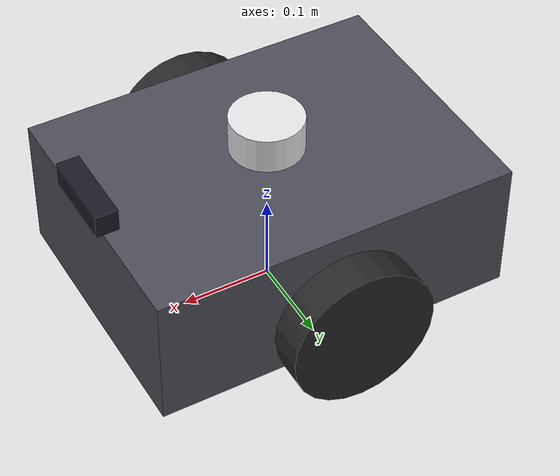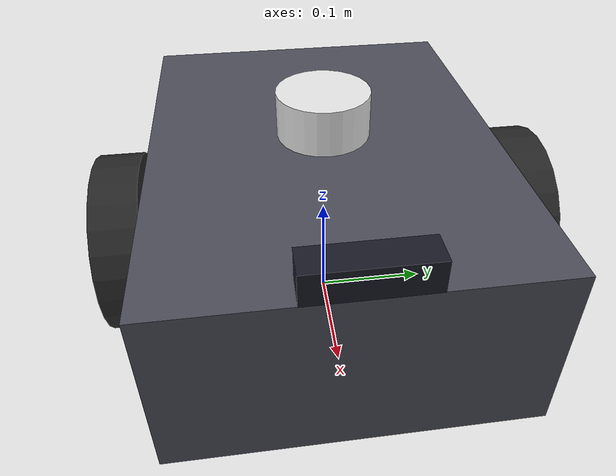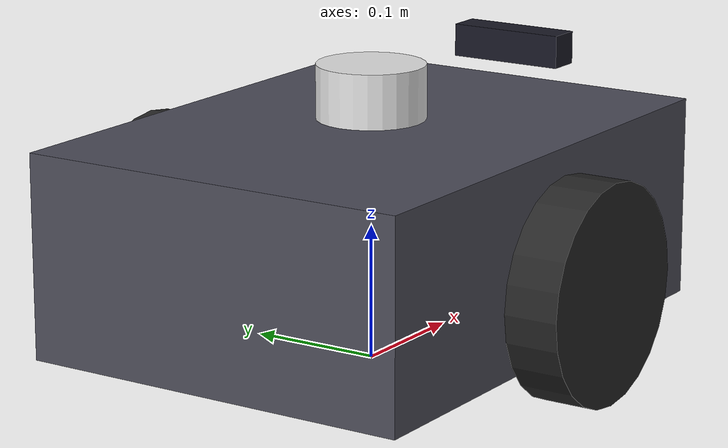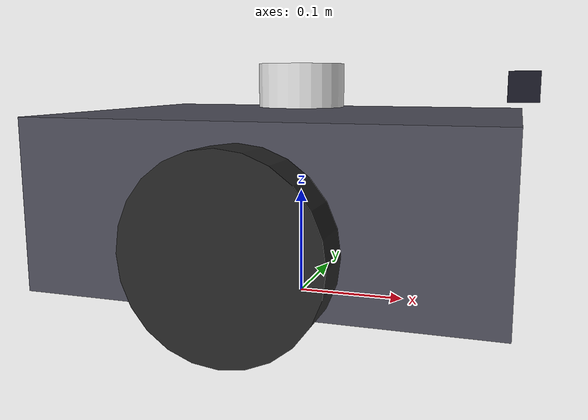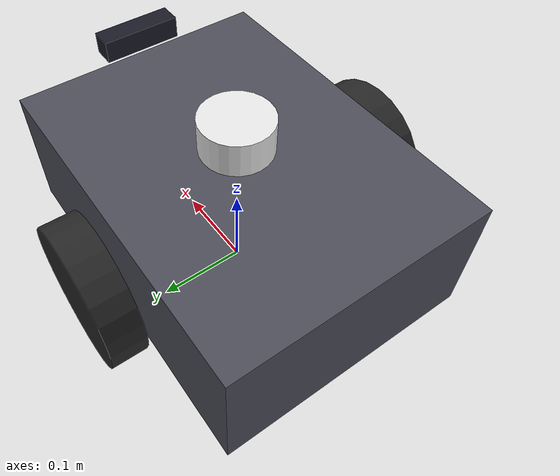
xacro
<?xml version="1.0"?>
<robot name="agenticros_amr" xmlns:xacro="http://www.ros.org/wiki/xacro">

  <!-- ===================== base_footprint (Nav2 / costmap convention) ===================== -->
  <link name="base_footprint"/>
  <joint name="base_footprint_joint" type="fixed">
    <parent link="base_footprint"/>
    <child link="base_link"/>
    <!-- base_link visual origin is chassis center ~0.10 m above ground -->
    <origin xyz="0 0 0.10" rpy="0 0 0"/>
  </joint>

  <!-- ===================== base_link ===================== -->
  <link name="base_link">
    <visual>
      <origin xyz="0 0 0" rpy="0 0 0"/>
      <geometry><box size="0.40 0.30 0.15"/></geometry>
      <material name="chassis_grey"><color rgba="0.3 0.3 0.35 1"/></material>
    </visual>
    <collision>
      <origin xyz="0 0 0" rpy="0 0 0"/>
      <geometry><box size="0.40 0.30 0.15"/></geometry>
    </collision>
    <inertial>
      <mass value="5.0"/>
      <inertia ixx="0.10" iyy="0.15" izz="0.20" ixy="0" ixz="0" iyz="0"/>
    </inertial>
  </link>

  <!-- ===================== Wheels ===================== -->
  <!-- xacro provides ${pi} as a built-in property; don't redefine it. -->
  <xacro:macro name="wheel" params="prefix y_offset">
    <link name="${prefix}_wheel_link">
      <visual>
        <origin xyz="0 0 0" rpy="${pi/2} 0 0"/>
        <geometry><cylinder radius="0.08" length="0.04"/></geometry>
        <material name="wheel_black"><color rgba="0.15 0.15 0.15 1"/></material>
      </visual>
      <collision>
        <origin xyz="0 0 0" rpy="${pi/2} 0 0"/>
        <geometry><cylinder radius="0.08" length="0.04"/></geometry>
      </collision>
      <inertial>
        <mass value="0.5"/>
        <inertia ixx="0.0008" iyy="0.0008" izz="0.0015" ixy="0" ixz="0" iyz="0"/>
      </inertial>
    </link>
    <joint name="${prefix}_wheel_joint" type="continuous">
      <parent link="base_link"/>
      <child link="${prefix}_wheel_link"/>
      <origin xyz="0 ${y_offset} -0.02" rpy="0 0 0"/>
      <axis xyz="0 1 0"/>
    </joint>
  </xacro:macro>
  <xacro:wheel prefix="left"  y_offset="0.18"/>
  <xacro:wheel prefix="right" y_offset="-0.18"/>

  <!-- ===================== Caster ===================== -->
  <link name="caster_link">
    <visual>
      <geometry><sphere radius="0.04"/></geometry>
      <material name="wheel_black"/>
    </visual>
    <collision>
      <geometry><sphere radius="0.04"/></geometry>
    </collision>
    <inertial>
      <mass value="0.1"/>
      <inertia ixx="0.00004" iyy="0.00004" izz="0.00004" ixy="0" ixz="0" iyz="0"/>
    </inertial>
  </link>
  <joint name="caster_joint" type="fixed">
    <parent link="base_link"/>
    <child link="caster_link"/>
    <origin xyz="0.16 0 -0.06" rpy="0 0 0"/>
  </joint>

  <!-- ===================== Depth camera ===================== -->
  <link name="camera_link">
    <visual>
      <geometry><box size="0.025 0.09 0.025"/></geometry>
      <material name="camera_alu"><color rgba="0.1 0.1 0.15 1"/></material>
    </visual>
  </link>
  <joint name="camera_joint" type="fixed">
    <parent link="base_link"/>
    <child link="camera_link"/>
    <origin xyz="0.20 0 0.10" rpy="0 0 0"/>
  </joint>
  <!-- Optical frame: REP-103 (z forward, x right, y down) used by image topics -->
  <link name="camera_optical_link"/>
  <joint name="camera_optical_joint" type="fixed">
    <parent link="camera_link"/>
    <child link="camera_optical_link"/>
    <origin xyz="0 0 0" rpy="${-pi/2} 0 ${-pi/2}"/>
  </joint>

  <!-- ===================== 2D LiDAR ===================== -->
  <link name="lidar_link">
    <visual>
      <geometry><cylinder radius="0.04" length="0.04"/></geometry>
      <material name="lidar_white"><color rgba="0.9 0.9 0.9 1"/></material>
    </visual>
  </link>
  <joint name="lidar_joint" type="fixed">
    <parent link="base_link"/>
    <child link="lidar_link"/>
    <origin xyz="0 0 0.10" rpy="0 0 0"/>
  </joint>

  <!-- ===================== IMU ===================== -->
  <link name="imu_link"/>
  <joint name="imu_joint" type="fixed">
    <parent link="base_link"/>
    <child link="imu_link"/>
    <origin xyz="0 0 0" rpy="0 0 0"/>
  </joint>
</robot>
